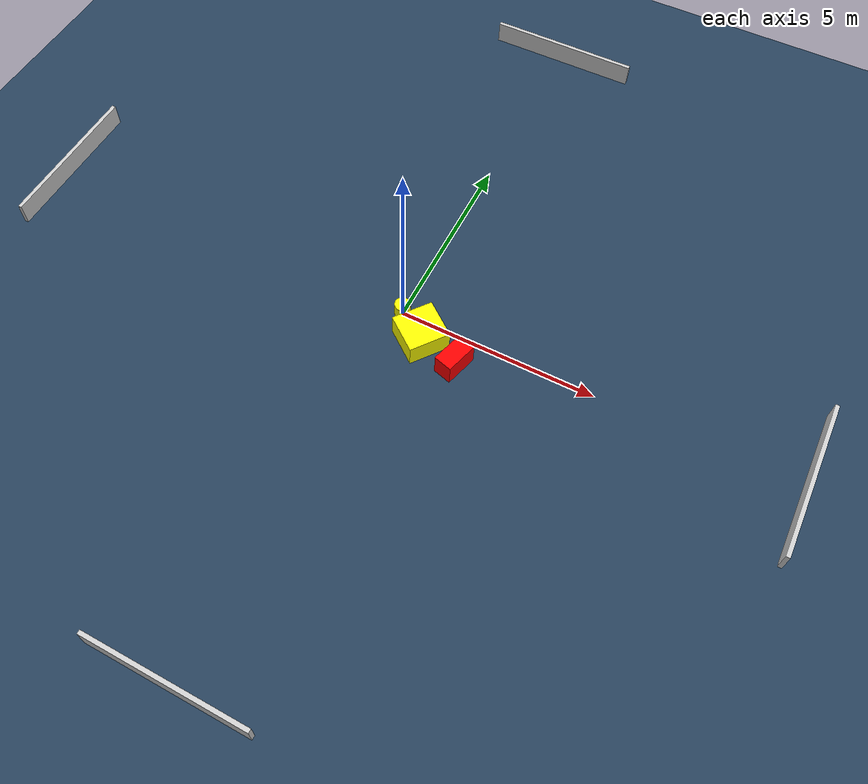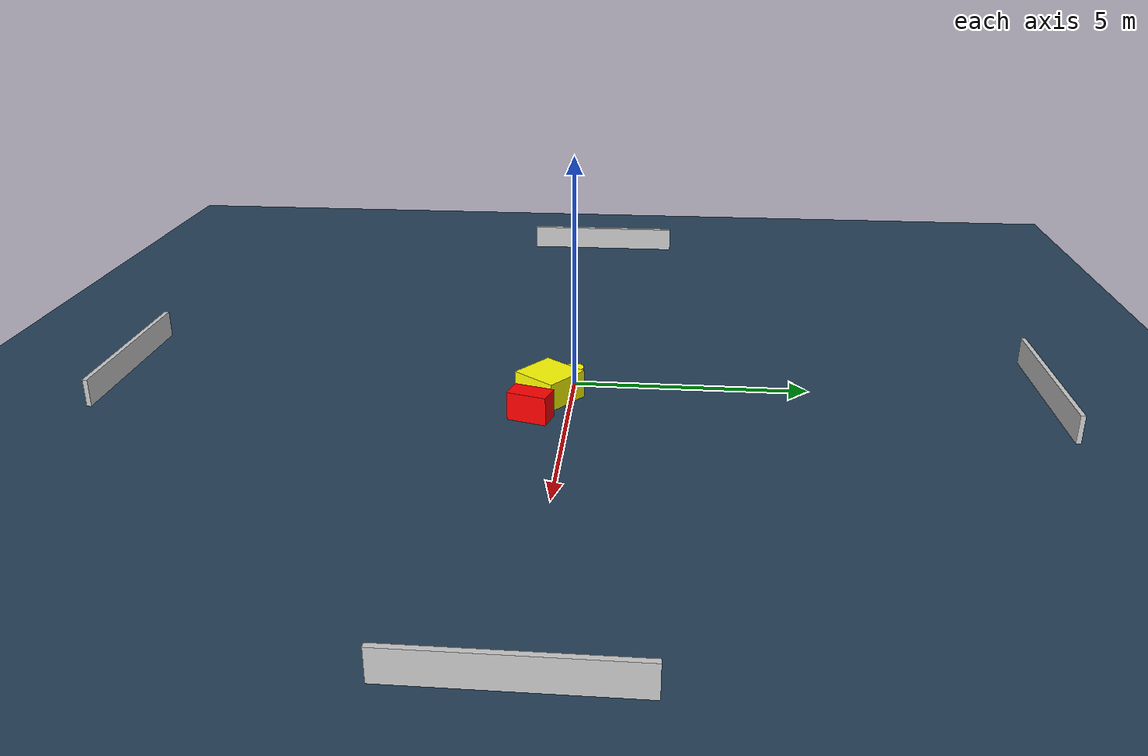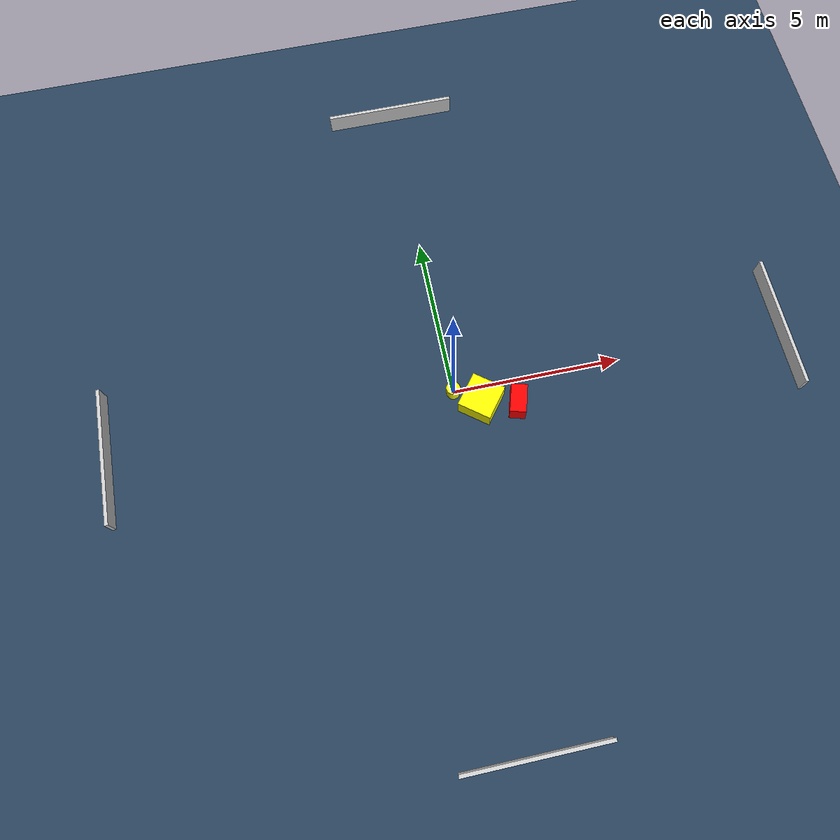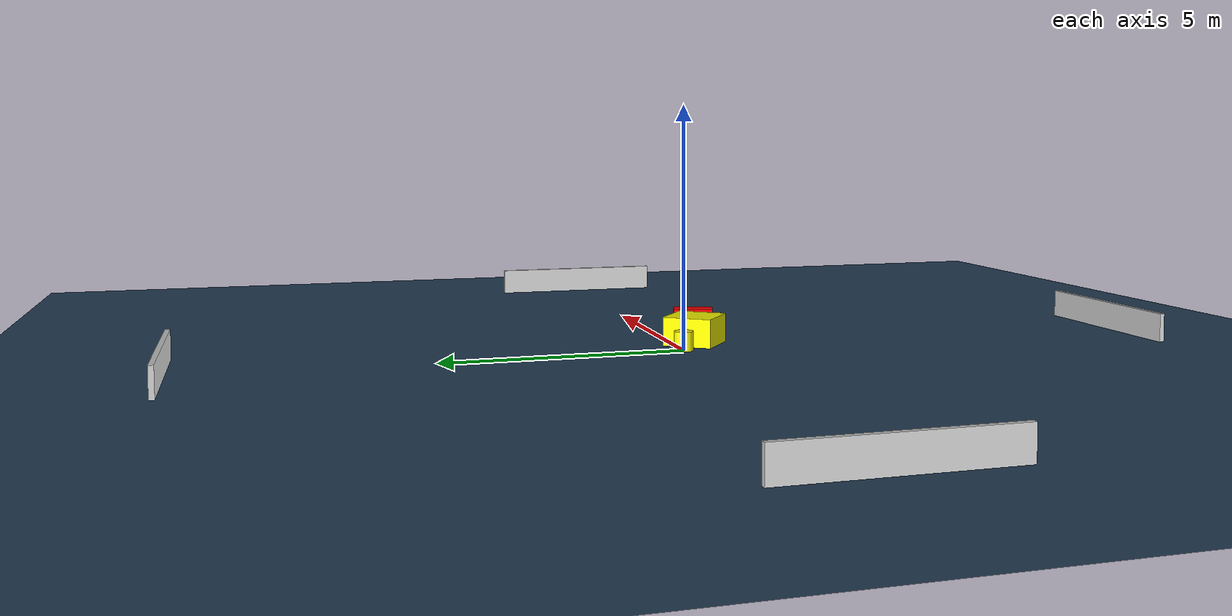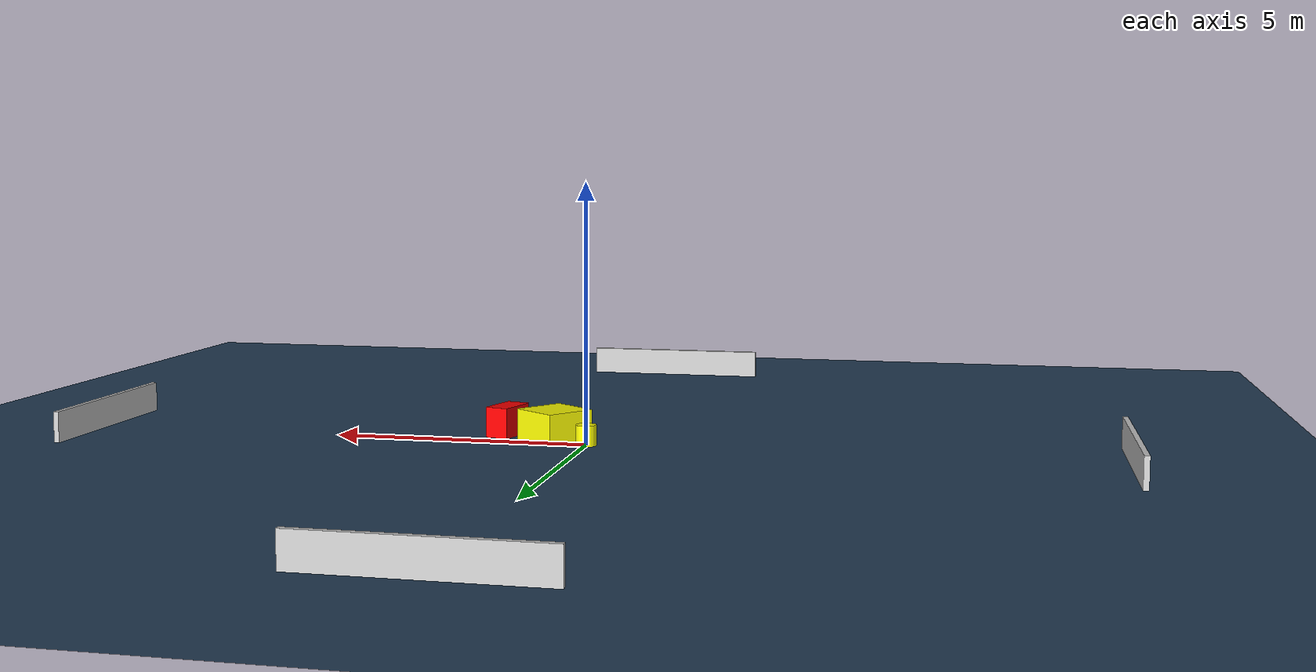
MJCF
<?xml version="1.0" ?>
<mujoco model="generated_environment">
  <option timestep="0.01" integrator="RK4" cone="elliptic"/>
  <default>
    <geom density="1"/>
  </default>
  <asset>
    <texture builtin="gradient" height="3072" name="skybox" rgb1="0.3 0.5 0.7" rgb2="0 0 0" type="skybox" width="512"/>
    <texture builtin="checker" height="300" name="groundplane" rgb1="0.2 0.3 0.4" rgb2="0.1 0.2 0.3" type="2d" width="300"/>
    <material name="groundplane" reflectance="0.2" texrepeat="5 5" texture="groundplane"/>
  </asset>
  <worldbody>
    <light dir="0 0 -1" directional="true" pos="0 0 1.5"/>
    <geom condim="3" friction="0.5 0.005 0.001" material="groundplane" name="floor" pos="0 0 0" size="0 0 0.05" type="plane"/>
    <body name="walls">
      <geom name="wall_1" condim="4" pos="-10.0 0.0 0.3" rgba="0.800000011920929 0.800000011920929 0.800000011920929 1.0" size="0.05 2.0 0.3" type="box"/>
      <geom name="wall_2" condim="4" pos="10.0 0.0 0.3" rgba="0.800000011920929 0.800000011920929 0.800000011920929 1.0" size="0.05 2.0 0.3" type="box"/>
      <geom name="wall_3" condim="4" pos="0.0 -10.0 0.3" rgba="0.800000011920929 0.800000011920929 0.800000011920929 1.0" size="2.0 0.05 0.3" type="box"/>
      <geom name="wall_4" condim="4" pos="0.0 10.0 0.3" rgba="0.800000011920929 0.800000011920929 0.800000011920929 1.0" size="2.0 0.05 0.3" type="box"/>
    </body>
    <body name="robot">
      <joint name="joint_x" type="slide" pos="0 0 0" axis="1 0 0"/>
      <joint name="joint_y" type="slide" pos="0 0 0" axis="0 1 0"/>
      <geom name="robot" type="cylinder" pos="0.0 0.0 0.2" size="0.2 0.2 0.0" mass="5.0" friction="1.0 0.005 0.0001" condim="4" rgba="1.0 1.0 0.0 1.0"/>
    </body>
    <body name="obstacle_1_movable">
      <geom name="obstacle_1_movable" condim="4" pos="0.7298012034627627 -0.46745860924163063 0.3" euler="0 0 52.4425737939302" friction="0.0 0.005 0.001" rgba="1.0 1.0 0.0 1.0" size="0.5218427874015241 0.502372026560908 0.3" type="box" mass="0.1"/>
      <joint type="free"/>
    </body>
    <body name="obstacle_2_static">
      <geom name="obstacle_2_static" condim="4" pos="1.7575006376503068 -0.7526006717532434 0.3" euler="0 0 253.87973707988695" friction="0.0 0.005 0.001" rgba="1.0 0.0 0.0 1.0" size="0.4211853075475061 0.23587014350481444 0.3" type="box"/>
    </body>
  </worldbody>
  <actuator>
    <motor name="actuator_x" joint="joint_x" gear="1" ctrlrange="-1 1"/>
    <motor name="actuator_y" joint="joint_y" gear="1" ctrlrange="-1 1"/>
  </actuator>
</mujoco>
